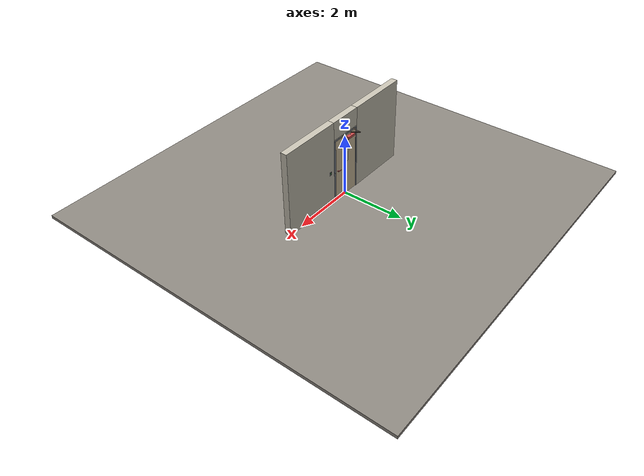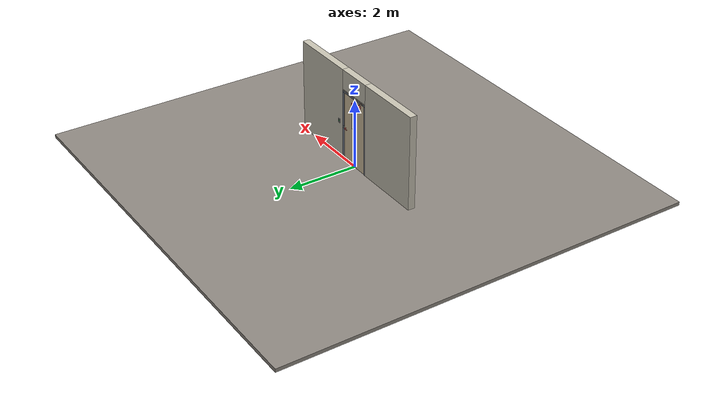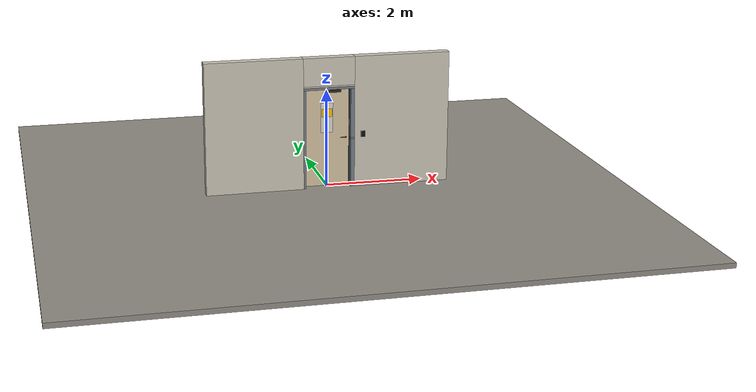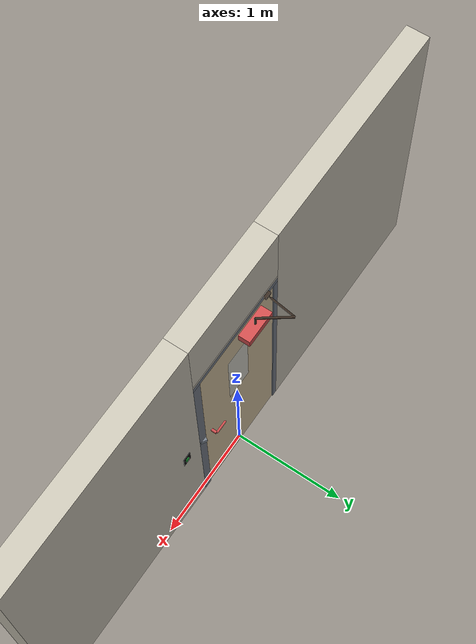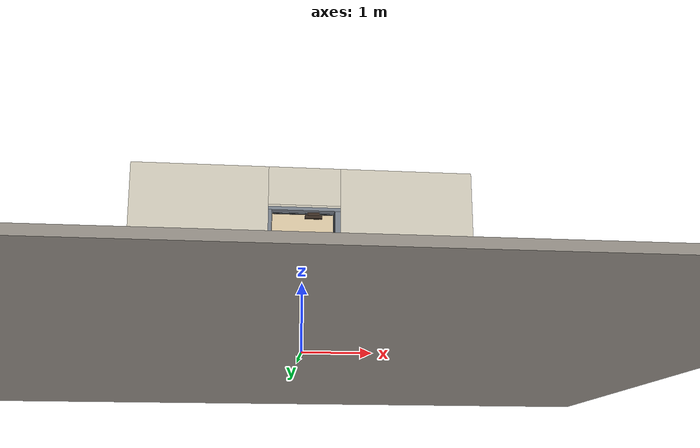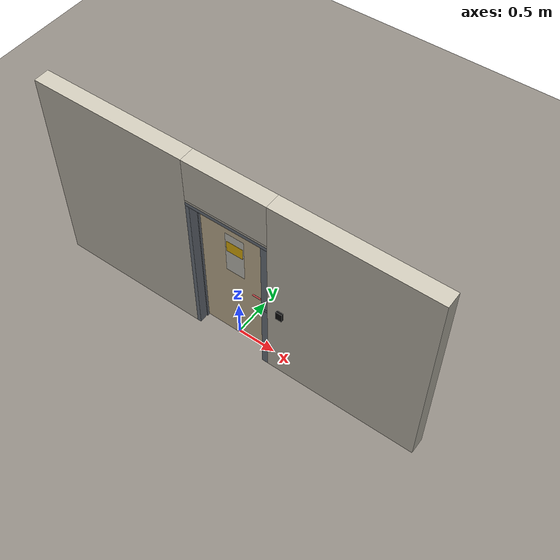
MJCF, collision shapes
<?xml version="1.0" ?>
<mujoco model="db0189_swing_single_full">
  <compiler angle="radian" meshdir="../../hardware" texturedir="../../textures" autolimits="true" inertiafromgeom="false"/>
  <option timestep="0.002" integrator="implicitfast" cone="elliptic" impratio="10" noslip_iterations="3">
    <flag multiccd="enable"/>
  </option>
  <size memory="16M"/>
  <default>
    <geom condim="4" solref="0.005 1" solimp="0.95 0.99 0.001"/>
    <joint solreflimit="0.005 1" solimplimit="0.95 0.99 0.001"/>
    <tendon solreflimit="0.005 1"/>
    <equality solref="0.002 1"/>
  </default>
  <visual>
    <headlight ambient="0.4 0.4 0.4" diffuse="0.7 0.7 0.7" specular="0.2 0.2 0.2"/>
    <quality shadowsize="4096"/>
    <map znear="0.01" zfar="60"/>
  </visual>
  <asset>
    <mesh name="closer_body_fdc4667657" file="closer_body_fdc4667657.obj"/>
    <mesh name="hinge_e22b26c0c1" file="hinge_e22b26c0c1.obj"/>
    <mesh name="hinge_jamb_e1d088f8dc" file="hinge_jamb_e1d088f8dc.obj"/>
    <mesh name="lever_6268dcb28c" file="lever_6268dcb28c.obj"/>
    <material name="mat_floor" rgba="0.55 0.53 0.5 1" specular="0.2" shininess="0.15" reflectance="0"/>
    <material name="mat_wall" rgba="0.78 0.76 0.7 1" specular="0.2" shininess="0.1" reflectance="0"/>
    <material name="mat_leaf" rgba="0.82 0.75 0.62 1" specular="0.23" shininess="0.32" reflectance="0.02"/>
    <material name="mat_glass" rgba="0.9 0.93 0.95 0.6" specular="0.2" shininess="0.5" reflectance="0.1"/>
    <material name="mat_hinge" rgba="0.65 0.66 0.68 1" specular="0.74" shininess="0.5" reflectance="0.36"/>
    <material name="mat_op_stainless" rgba="0.75 0.76 0.77 1" specular="0.8" shininess="0.65" reflectance="0.4"/>
    <material name="mat_trim" rgba="0.85 0.66 0.3 1" specular="0.8" shininess="0.75" reflectance="0.4"/>
    <material name="mat_bolt" rgba="0.85 0.66 0.3 1" specular="0.8" shininess="0.75" reflectance="0.4"/>
    <material name="mat_maglock" rgba="0.22 0.17 0.13 1" specular="0.8" shininess="0.6" reflectance="0.4"/>
    <material name="mat_frame" rgba="0.45 0.48 0.52 1" specular="0.32" shininess="0.6" reflectance="0.08"/>
    <material name="mat_seal" rgba="0.1 0.1 0.1 1" specular="0.2" shininess="0.1" reflectance="0"/>
    <material name="mat_closer" rgba="0.22 0.17 0.13 1" specular="0.8" shininess="0.6" reflectance="0.4"/>
    <material name="mat_placard" rgba="0.95 0.75 0.05 1" specular="0.2" shininess="0.5" reflectance="0"/>
    <material name="mat_wallreader" rgba="0.05 0.05 0.05 1" specular="0.38" shininess="0.3" reflectance="0.12"/>
    <material name="mat_rex" rgba="0.1 0.6 0.2 1" specular="0.2" shininess="0.6" reflectance="0"/>
    <texture name="skybox" type="skybox" builtin="gradient" rgb1="0.6 0.7 0.85" rgb2="0.9 0.92 0.95" width="256" height="256"/>
  </asset>
  <worldbody>
    <light name="sun" pos="1.5 -2.5 4" dir="-0.3 0.5 -0.8" directional="true" diffuse="0.8 0.8 0.8" specular="0.3 0.3 0.3" castshadow="true"/>
    <light name="fill" pos="-1.5 2.5 3" dir="0.3 -0.5 -0.7" directional="true" diffuse="0.35 0.35 0.4" castshadow="false"/>
    <camera name="robot_view" pos="0 -2.613187 1.734312" xyaxes="1 0 0 0 0.26963 0.962964" fovy="52"/>
    <camera name="far_view" pos="0 2.471187 1.734312" xyaxes="-1 0 0 0 -0.26963 0.962964" fovy="52"/>
    <camera name="iso" pos="1.932062 -2.206438 2.141063" xyaxes="0.741536 0.670913 0 -0.242917 0.268487 0.932151" fovy="46"/>
    <camera name="detail_handle" pos="0.4705 -0.877 1.296" xyaxes="0.97561 0.219512 0 -0.070934 0.315262 0.94635" fovy="38"/>
    <geom name="floor" type="box" size="6 6 0.05" pos="0 0 -0.05" material="mat_floor" group="0" contype="1" conaffinity="1" friction="0.8 0.005 0.0001" density="2400"/>
    <geom name="wall_left" type="box" size="0.99475 0.1 1.35" pos="-1.50525 -0.071 1.35" material="mat_wall" group="0" contype="1" conaffinity="1" friction="0.6 0.005 0.0001" density="800"/>
    <geom name="wall_right" type="box" size="0.97975 0.1 1.35" pos="1.52025 -0.071 1.35" material="mat_wall" group="0" contype="1" conaffinity="1" friction="0.6 0.005 0.0001" density="800"/>
    <geom name="wall_header" type="box" size="0.5255 0.1 0.2875" pos="0.015 -0.071 2.4125" material="mat_wall" group="0" contype="1" conaffinity="1" friction="0.6 0.005 0.0001" density="800"/>
    <geom name="hinge_0_jamb" type="mesh" mesh="hinge_jamb_e1d088f8dc" pos="-0.4575 0.029 0.259" quat="0 1 0 0" material="mat_hinge" group="1" contype="0" conaffinity="0" density="7850"/>
    <geom name="hinge_1_jamb" type="mesh" mesh="hinge_jamb_e1d088f8dc" pos="-0.4575 0.029 1.025" quat="0 1 0 0" material="mat_hinge" group="1" contype="0" conaffinity="0" density="7850"/>
    <geom name="hinge_2_jamb" type="mesh" mesh="hinge_jamb_e1d088f8dc" pos="-0.4575 0.029 1.861" quat="0 1 0 0" material="mat_hinge" group="1" contype="0" conaffinity="0" density="7850"/>
    <geom name="leaf_maglock_body" type="box" size="0.125 0.025 0.02" pos="0.1565 -0.057 1.98" material="mat_maglock" group="0" contype="1" conaffinity="1" friction="0.6 0.005 0.0001" density="2000"/>
    <geom name="leaf_maglock_bracket" type="box" size="0.09 0.025 0.0225" pos="0.1565 -0.057 2.0225" material="mat_maglock" group="1" contype="0" conaffinity="0" density="7850"/>
    <geom name="jamb_hinge" type="box" size="0.025 0.1 1.0225" pos="-0.4855 -0.071 1.0225" material="mat_frame" group="0" contype="1" conaffinity="1" friction="0.6 0.005 0.0001" density="300"/>
    <geom name="strike_1016_wall_n" type="box" size="0.04 0.08075 0.0183" pos="0.5005 -0.09025 1.016" material="mat_frame" group="0" contype="1" conaffinity="1" friction="0.6 0.005 0.0001" density="300"/>
    <geom name="strike_1016_wall_p" type="box" size="0.04 0.008 0.0183" pos="0.5005 0.0175 1.016" material="mat_frame" group="0" contype="1" conaffinity="1" friction="0.6 0.005 0.0001" density="300"/>
    <geom name="strike_1016_ramp" type="box" size="0.04 0.018028 0.0183" pos="0.503782 0.018312 1.016" quat="0.957092 0 0 -0.289784" material="mat_frame" group="0" contype="1" conaffinity="1" friction="0.12 0.005 0.0001" density="300"/>
    <geom name="strike_1016_back" type="box" size="0.0285 0.0095 0.0183" pos="0.512 0 1.016" material="mat_frame" group="0" contype="1" conaffinity="1" friction="0.6 0.005 0.0001" density="300"/>
    <geom name="jamb_strike_0" type="box" size="0.04 0.1 0.49885" pos="0.5005 -0.071 0.49885" material="mat_frame" group="0" contype="1" conaffinity="1" friction="0.6 0.005 0.0001" density="300"/>
    <geom name="jamb_strike_1" type="box" size="0.04 0.1 0.50535" pos="0.5005 -0.071 1.53965" material="mat_frame" group="0" contype="1" conaffinity="1" friction="0.6 0.005 0.0001" density="300"/>
    <geom name="jamb_head" type="box" size="0.5255 0.1 0.025" pos="0.015 -0.071 2.07" material="mat_frame" group="0" contype="1" conaffinity="1" friction="0.6 0.005 0.0001" density="300"/>
    <geom name="head_stud" type="box" size="0.5255 0.1 0.015" pos="0.015 -0.071 2.11" material="mat_wall" group="0" contype="1" conaffinity="1" friction="0.6 0.005 0.0001" density="500"/>
    <geom name="stop_hinge" type="box" size="0.0055 0.016 1.0225" pos="-0.455 -0.0385 1.0225" material="mat_frame" group="0" contype="1" conaffinity="1" friction="0.6 0.005 0.0001" density="300"/>
    <geom name="stop_strike" type="box" size="0.0055 0.016 1.0225" pos="0.455 -0.0385 1.0225" material="mat_frame" group="0" contype="1" conaffinity="1" friction="0.6 0.005 0.0001" density="300"/>
    <geom name="stop_head" type="box" size="0.4605 0.016 0.0055" pos="0 -0.0385 2.0395" material="mat_frame" group="0" contype="1" conaffinity="1" friction="0.6 0.005 0.0001" density="300"/>
    <geom name="seal_hinge" type="box" size="0.004 0.002 1.0225" pos="-0.4575 -0.024 1.0225" material="mat_seal" group="1" contype="0" conaffinity="0" density="1100"/>
    <geom name="seal_strike" type="box" size="0.004 0.002 1.0225" pos="0.4575 -0.024 1.0225" material="mat_seal" group="1" contype="0" conaffinity="0" density="1100"/>
    <geom name="seal_head" type="box" size="0.4405 0.002 0.008" pos="0 -0.024 2.033" material="mat_seal" group="1" contype="0" conaffinity="0" density="1100"/>
    <geom name="closer_bracket" type="box" size="0.03 0.012 0.014" pos="-0.3605 0.041 2.075" material="mat_closer" group="1" contype="0" conaffinity="0" density="2700"/>
    <geom name="wall_reader" type="box" size="0.04 0.015 0.06" pos="0.7105 -0.186 1.1" material="mat_wallreader" group="0" contype="1" conaffinity="1" friction="0.6 0.005 0.0001" density="1000"/>
    <geom name="rex_plate" type="box" size="0.04 0.003 0.06" pos="0.7105 0.032 1.1" material="mat_wallreader" group="1" contype="0" conaffinity="0" density="1000"/>
    <site name="approach_point" pos="0 -1.5 0" quat="1 0 0 0" size="0.05" rgba="0.2 0.9 0.2 0.5" group="4"/>
    <site name="goal_point" pos="0 1.5 0" quat="1 0 0 0" size="0.05" rgba="0.2 0.9 0.2 0.5" group="4"/>
    <site name="door_plane_center" pos="0 0 1.0225" quat="1 0 0 0" size="0.02" rgba="0.2 0.9 0.2 0.5" group="4"/>
    <body name="rex_button" pos="0.7105 0.035 1.1">
      <inertial pos="0 0.004 0" mass="0.010053" quat="0 0 0.707107 -0.707107" diaginertia="0.000001059 0.000001059 0.000002011"/>
      <joint name="rex_button_slide" type="slide" axis="0 -1 0" limited="true" range="0 0.004" damping="1" stiffness="1500" springref="-0.004" armature="0.1"/>
      <geom name="rex_button_geom" type="cylinder" size="0.02 0.004" pos="0 0.004 0" quat="0.707107 -0.707107 0 0" material="mat_rex" group="0" contype="1" conaffinity="1" friction="0.6 0.005 0.0001" density="1000"/>
    </body>
    <body name="leaf" pos="-0.4605 0 0">
      <inertial pos="0.41487 0.0184 1.273136" mass="51.623609" quat="-0.468398 0.495542 0.517921 0.516527" diaginertia="3.022726143 21.909762106 24.836011591"/>
      <joint name="leaf_hinge" type="hinge" axis="0 0 1" pos="0.003 0.029 0" limited="true" range="0 1.570796" solreflimit="0.02 1" damping="12.25611" frictionloss="1.106969" stiffness="12.827888" springref="-1.543512" armature="0.02"/>
      <geom name="leaf_slab" type="box" size="0.457 0.022 1.016" pos="0.46 0 1.025" material="mat_leaf" group="0" contype="1" conaffinity="1" friction="0.4 0.005 0.0001" density="1"/>
      <geom name="leaf_glass_0" type="box" size="0.125 0.0228 0.3048" pos="0.46 0 1.4314" material="mat_glass" group="1" contype="0" conaffinity="0" density="1"/>
      <geom name="hinge_0" type="mesh" mesh="hinge_e22b26c0c1" pos="0.003 0.029 0.259" quat="0 1 0 0" material="mat_hinge" group="1" contype="0" conaffinity="0" density="7850"/>
      <geom name="hinge_1" type="mesh" mesh="hinge_e22b26c0c1" pos="0.003 0.029 1.025" quat="0 1 0 0" material="mat_hinge" group="1" contype="0" conaffinity="0" density="7850"/>
      <geom name="hinge_2" type="mesh" mesh="hinge_e22b26c0c1" pos="0.003 0.029 1.861" quat="0 1 0 0" material="mat_hinge" group="1" contype="0" conaffinity="0" density="7850"/>
      <geom name="leaf_latch_bolt_faceplate" type="box" size="0.0006 0.014 0.0283" pos="0.9164 0 1.016" material="mat_bolt" group="1" contype="0" conaffinity="0" density="8500"/>
      <geom name="leaf_maglock_armature" type="box" size="0.09 0.005 0.02" pos="0.617 -0.027 1.98" material="mat_maglock" group="1" contype="0" conaffinity="0" density="7800"/>
      <geom name="closer_body" type="mesh" mesh="closer_body_fdc4667657" pos="0.3 0.022 1.952" quat="-0.707107 0.707107 0 0" material="mat_closer" group="1" contype="0" conaffinity="0" density="2000"/>
      <geom name="closer_body_col" type="box" size="0.145 0.05 0.035" pos="0.3 0.072 1.952" material="mat_closer" group="3" contype="1" conaffinity="1" rgba="0.8 0.3 0.3 0.25" friction="0.6 0.005 0.0001" density="2000"/>
      <geom name="closer_pinion_shaft" type="cylinder" size="0.008 0.0615" pos="0.3 0.072 2.0135" material="mat_closer" group="1" contype="0" conaffinity="0" density="2700"/>
      <geom name="warning_placard" type="box" size="0.11 0.001 0.08" pos="0.46 -0.023 1.533" material="mat_placard" group="2" contype="0" conaffinity="0" density="1000"/>
      <site name="leaf_edge_mid" pos="0.917 0 1.016" quat="1 0 0 0" size="0.02" rgba="0.2 0.9 0.2 0.5" group="4"/>
      <body name="leaf_handle" pos="0.847 0 1.016">
        <inertial pos="-0.035149 0 0" mass="1.038236" quat="0 0.707107 0.707107 0" diaginertia="0.002348364 0.00382535 0.005606687"/>
        <joint name="leaf_handle_hinge" type="hinge" axis="0 -1 0" limited="true" range="0 0.96" damping="0.255791" frictionloss="0.05" stiffness="1.2" springref="-0.583333" armature="0.01"/>
        <geom name="leaf_handle_spindle" type="cylinder" size="0.006 0.03" pos="0 0 0" quat="0.707107 -0.707107 0 0" material="mat_op_stainless" group="1" contype="0" conaffinity="0" density="7850"/>
        <geom name="leaf_handle_lever_n" type="mesh" mesh="lever_6268dcb28c" pos="0 -0.022 0" quat="0.707107 0.707107 0 0" material="mat_op_stainless" group="1" contype="0" conaffinity="0" density="3000"/>
        <geom name="leaf_handle_lever_col_n" type="capsule" size="0.0095 0.0505" pos="-0.06 -0.077 0" quat="0.707107 0 -0.707107 0" material="mat_op_stainless" group="3" contype="1" conaffinity="1" rgba="0.8 0.3 0.3 0.25" friction="0.7 0.01 0.0001" density="3000"/>
        <geom name="leaf_handle_hub_col_n" type="cylinder" size="0.012 0.022" pos="0 -0.052 0" quat="0.707107 -0.707107 0 0" material="mat_op_stainless" group="3" contype="1" conaffinity="1" rgba="0.8 0.3 0.3 0.25" friction="0.6 0.005 0.0001" density="3000"/>
        <geom name="leaf_handle_lever_p" type="mesh" mesh="lever_6268dcb28c" pos="0 0.022 0" quat="-0.707107 0.707107 0 0" material="mat_op_stainless" group="1" contype="0" conaffinity="0" density="3000"/>
        <geom name="leaf_handle_lever_col_p" type="capsule" size="0.0095 0.0505" pos="-0.06 0.077 0" quat="0.707107 0 -0.707107 0" material="mat_op_stainless" group="3" contype="1" conaffinity="1" rgba="0.8 0.3 0.3 0.25" friction="0.7 0.01 0.0001" density="3000"/>
        <geom name="leaf_handle_hub_col_p" type="cylinder" size="0.012 0.022" pos="0 0.052 0" quat="0.707107 -0.707107 0 0" material="mat_op_stainless" group="3" contype="1" conaffinity="1" rgba="0.8 0.3 0.3 0.25" friction="0.6 0.005 0.0001" density="3000"/>
        <site name="leaf_handle_grip_n" pos="-0.096 -0.077 0" quat="1 0 0 0" size="0.012" rgba="0.2 0.9 0.2 0.5" group="4"/>
        <site name="leaf_handle_grip_p" pos="-0.096 0.077 0" quat="1 0 0 0" size="0.012" rgba="0.2 0.9 0.2 0.5" group="4"/>
      </body>
      <body name="leaf_latch_bolt" pos="0.917 0 1.016">
        <inertial pos="-0.0055 0 0" mass="0.074627" quat="0.92388 -0.382683 0 0" diaginertia="0.000002271 0.000013255 0.000013255"/>
        <joint name="leaf_latch_bolt_slide" type="slide" axis="-1 0 0" limited="true" range="0 0.019" damping="2" frictionloss="0.3" stiffness="600" springref="-0.01" armature="0.1"/>
        <geom name="leaf_latch_bolt_capsule" type="capsule" size="0.008 0.0165" pos="-0.0055 0 0" quat="0.707107 0 0.707107 0" material="mat_bolt" group="0" contype="1" conaffinity="1" friction="0.2 0.005 0.0001" density="8500"/>
      </body>
      <body name="closer_arm_main" pos="0.3 0.072 2.075" quat="0.454107 0 0 0.890947">
        <inertial pos="0.14 0 0" mass="0.12096" quat="1 0 0 0" diaginertia="0.000003588 0.00079128 0.000792852"/>
        <joint name="closer_pinion" type="hinge" axis="0 0 1" limited="false" damping="0.01" armature="0.002"/>
        <geom name="closer_arm_main_geom" type="box" size="0.14 0.008 0.005" pos="0.14 0 0" material="mat_closer" group="1" contype="0" conaffinity="0" density="2700"/>
        <body name="closer_arm_fore" pos="0.28 0 0" quat="-0.373215 0 0 -0.927745">
          <inertial pos="0.128088 0 0" mass="0.076531" quat="1 0 0 0" diaginertia="0.000001771 0.000437665 0.000438201"/>
          <joint name="closer_elbow" type="hinge" axis="0 0 1" limited="false" damping="0.01" armature="0.002"/>
          <geom name="closer_arm_fore_geom" type="box" size="0.1125 0.007 0.004" pos="0.1125 0 0" material="mat_closer" group="1" contype="0" conaffinity="0" density="2700"/>
          <geom name="closer_fore_neck" type="box" size="0.0175 0.003 0.003" pos="0.2425 0 0" material="mat_closer" group="1" contype="0" conaffinity="0" density="2700"/>
          <geom name="closer_fore_pivot" type="cylinder" size="0.005 0.012" pos="0.26 0 0" material="mat_closer" group="1" contype="0" conaffinity="0" density="2700"/>
        </body>
      </body>
    </body>
  </worldbody>
  <tendon>
    <fixed name="leaf_latch_bolt_coupling" limited="true" range="0 10">
      <joint joint="leaf_latch_bolt_slide" coef="1"/>
      <joint joint="leaf_handle_hinge" coef="-0.020879"/>
    </fixed>
  </tendon>
  <equality>
    <weld name="leaf_maglock" body1="leaf" body2="world" active="true"/>
    <connect name="closer_arm_connect" body1="closer_arm_fore" body2="world" anchor="0.26 0 0" active="true"/>
  </equality>
  <contact>
    <exclude body1="closer_arm_main" body2="leaf"/>
    <exclude body1="closer_arm_fore" body2="leaf"/>
    <exclude body1="closer_arm_main" body2="closer_arm_fore"/>
  </contact>
  <sensor>
    <jointpos name="leaf_hinge_pos" joint="leaf_hinge"/>
    <jointvel name="leaf_hinge_vel" joint="leaf_hinge"/>
    <jointpos name="leaf_handle_hinge_pos" joint="leaf_handle_hinge"/>
    <jointvel name="leaf_handle_hinge_vel" joint="leaf_handle_hinge"/>
    <jointpos name="leaf_latch_bolt_slide_pos" joint="leaf_latch_bolt_slide"/>
    <jointvel name="leaf_latch_bolt_slide_vel" joint="leaf_latch_bolt_slide"/>
    <jointpos name="rex_button_slide_pos" joint="rex_button_slide"/>
    <jointvel name="rex_button_slide_vel" joint="rex_button_slide"/>
  </sensor>
</mujoco>
